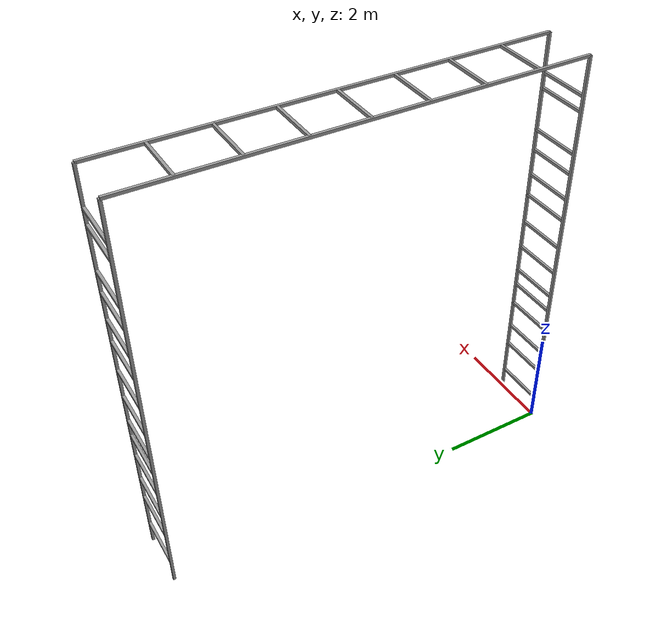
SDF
<?xml version="1.0" ?>
<sdf version="1.5">
  <model name="untei">
    <static>true</static>
    <link name="link">

<collision name="unteiV1collision">
<pose>0.00 0.00 4.00 0.00 0.00 0.00</pose>
<geometry> <box> <size>0.05 0.05 8.00</size> </box> </geometry>
</collision>
<visual name="unteiV1visual">
<pose>0.00 0.00 4.00 0.00 0.00 0.00</pose>
<geometry> <box> <size>0.05 0.05 8.00</size> </box> </geometry>
<material> <script> <uri>file://media/materials/scripts/gazebo.material</uri>
<name>Gazebo/Grey</name> </script> </material>
</visual>

<collision name="unteiV2collision">
<pose>1.00 0.00 4.00 0.00 0.00 0.00</pose>
<geometry> <box> <size>0.05 0.05 8.00</size> </box> </geometry>
</collision>
<visual name="unteiV2visual">
<pose>1.00 0.00 4.00 0.00 0.00 0.00</pose>
<geometry> <box> <size>0.05 0.05 8.00</size> </box> </geometry>
<material> <script> <uri>file://media/materials/scripts/gazebo.material</uri>
<name>Gazebo/Grey</name> </script> </material>
</visual>

<collision name="unteiH1collision">
<pose>0.50 0.00 0.486533 0.00 0.00 0.00</pose>
<geometry> <box> <size>1.00 0.05 0.05</size> </box> </geometry>
</collision>
<visual name="unteiH1visual">
<pose>0.50 0.00 0.486533 0.00 0.00 0.00</pose>
<geometry> <box> <size>1.00 0.05 0.05</size> </box> </geometry>
<material> <script> <uri>file://media/materials/scripts/gazebo.material</uri>
<name>Gazebo/Grey</name> </script> </material>
</visual>

<collision name="unteiH2collision">
<pose>0.50 0.00 1.221067 0.00 0.00 0.00</pose>
<geometry> <box> <size>1.00 0.05 0.05</size> </box> </geometry>
</collision>
<visual name="unteiH2visual">
<pose>0.50 0.00 1.221067 0.00 0.00 0.00</pose>
<geometry> <box> <size>1.00 0.05 0.05</size> </box> </geometry>
<material> <script> <uri>file://media/materials/scripts/gazebo.material</uri>
<name>Gazebo/Grey</name> </script> </material>
</visual>

<collision name="unteiH3collision">
<pose>0.50 0.00 1.710800 0.00 0.00 0.00</pose>
<geometry> <box> <size>1.00 0.05 0.05</size> </box> </geometry>
</collision>
<visual name="unteiH3visual">
<pose>0.50 0.00 1.710800 0.00 0.00 0.00</pose>
<geometry> <box> <size>1.00 0.05 0.05</size> </box> </geometry>
<material> <script> <uri>file://media/materials/scripts/gazebo.material</uri>
<name>Gazebo/Grey</name> </script> </material>
</visual>

<collision name="unteiH4collision">
<pose>0.50 0.00 2.299333 0.00 0.00 0.00</pose>
<geometry> <box> <size>1.00 0.05 0.05</size> </box> </geometry>
</collision>
<visual name="unteiH4visual">
<pose>0.50 0.00 2.299333 0.00 0.00 0.00</pose>
<geometry> <box> <size>1.00 0.05 0.05</size> </box> </geometry>
<material> <script> <uri>file://media/materials/scripts/gazebo.material</uri>
<name>Gazebo/Grey</name> </script> </material>
</visual>

<collision name="unteiH5collision">
<pose>0.50 0.00 2.783867 0.00 0.00 0.00</pose>
<geometry> <box> <size>1.00 0.05 0.05</size> </box> </geometry>
</collision>
<visual name="unteiH5visual">
<pose>0.50 0.00 2.783867 0.00 0.00 0.00</pose>
<geometry> <box> <size>1.00 0.05 0.05</size> </box> </geometry>
<material> <script> <uri>file://media/materials/scripts/gazebo.material</uri>
<name>Gazebo/Grey</name> </script> </material>
</visual>

<collision name="unteiH6collision">
<pose>0.50 0.00 3.134000 0.00 0.00 0.00</pose>
<geometry> <box> <size>1.00 0.05 0.05</size> </box> </geometry>
</collision>
<visual name="unteiH6visual">
<pose>0.50 0.00 3.134000 0.00 0.00 0.00</pose>
<geometry> <box> <size>1.00 0.05 0.05</size> </box> </geometry>
<material> <script> <uri>file://media/materials/scripts/gazebo.material</uri>
<name>Gazebo/Grey</name> </script> </material>
</visual>

<collision name="unteiH7collision">
<pose>0.50 0.00 3.687733 0.00 0.00 0.00</pose>
<geometry> <box> <size>1.00 0.05 0.05</size> </box> </geometry>
</collision>
<visual name="unteiH7visual">
<pose>0.50 0.00 3.687733 0.00 0.00 0.00</pose>
<geometry> <box> <size>1.00 0.05 0.05</size> </box> </geometry>
<material> <script> <uri>file://media/materials/scripts/gazebo.material</uri>
<name>Gazebo/Grey</name> </script> </material>
</visual>

<collision name="unteiH8collision">
<pose>0.50 0.00 4.263467 0.00 0.00 0.00</pose>
<geometry> <box> <size>1.00 0.05 0.05</size> </box> </geometry>
</collision>
<visual name="unteiH8visual">
<pose>0.50 0.00 4.263467 0.00 0.00 0.00</pose>
<geometry> <box> <size>1.00 0.05 0.05</size> </box> </geometry>
<material> <script> <uri>file://media/materials/scripts/gazebo.material</uri>
<name>Gazebo/Grey</name> </script> </material>
</visual>

<collision name="unteiH9collision">
<pose>0.50 0.00 4.859600 0.00 0.00 0.00</pose>
<geometry> <box> <size>1.00 0.05 0.05</size> </box> </geometry>
</collision>
<visual name="unteiH9visual">
<pose>0.50 0.00 4.859600 0.00 0.00 0.00</pose>
<geometry> <box> <size>1.00 0.05 0.05</size> </box> </geometry>
<material> <script> <uri>file://media/materials/scripts/gazebo.material</uri>
<name>Gazebo/Grey</name> </script> </material>
</visual>

<collision name="unteiH10collision">
<pose>0.50 0.00 5.301733 0.00 0.00 0.00</pose>
<geometry> <box> <size>1.00 0.05 0.05</size> </box> </geometry>
</collision>
<visual name="unteiH10visual">
<pose>0.50 0.00 5.301733 0.00 0.00 0.00</pose>
<geometry> <box> <size>1.00 0.05 0.05</size> </box> </geometry>
<material> <script> <uri>file://media/materials/scripts/gazebo.material</uri>
<name>Gazebo/Grey</name> </script> </material>
</visual>

<collision name="unteiH11collision">
<pose>0.50 0.00 5.811467 0.00 0.00 0.00</pose>
<geometry> <box> <size>1.00 0.05 0.05</size> </box> </geometry>
</collision>
<visual name="unteiH11visual">
<pose>0.50 0.00 5.811467 0.00 0.00 0.00</pose>
<geometry> <box> <size>1.00 0.05 0.05</size> </box> </geometry>
<material> <script> <uri>file://media/materials/scripts/gazebo.material</uri>
<name>Gazebo/Grey</name> </script> </material>
</visual>

<collision name="unteiH12collision">
<pose>0.50 0.00 6.210800 0.00 0.00 0.00</pose>
<geometry> <box> <size>1.00 0.05 0.05</size> </box> </geometry>
</collision>
<visual name="unteiH12visual">
<pose>0.50 0.00 6.210800 0.00 0.00 0.00</pose>
<geometry> <box> <size>1.00 0.05 0.05</size> </box> </geometry>
<material> <script> <uri>file://media/materials/scripts/gazebo.material</uri>
<name>Gazebo/Grey</name> </script> </material>
</visual>

<collision name="unteiH13collision">
<pose>0.50 0.00 7.009333 0.00 0.00 0.00</pose>
<geometry> <box> <size>1.00 0.05 0.05</size> </box> </geometry>
</collision>
<visual name="unteiH13visual">
<pose>0.50 0.00 7.009333 0.00 0.00 0.00</pose>
<geometry> <box> <size>1.00 0.05 0.05</size> </box> </geometry>
<material> <script> <uri>file://media/materials/scripts/gazebo.material</uri>
<name>Gazebo/Grey</name> </script> </material>
</visual>

<collision name="unteiH14collision">
<pose>0.50 0.00 7.290267 0.00 0.00 0.00</pose>
<geometry> <box> <size>1.00 0.05 0.05</size> </box> </geometry>
</collision>
<visual name="unteiH14visual">
<pose>0.50 0.00 7.290267 0.00 0.00 0.00</pose>
<geometry> <box> <size>1.00 0.05 0.05</size> </box> </geometry>
<material> <script> <uri>file://media/materials/scripts/gazebo.material</uri>
<name>Gazebo/Grey</name> </script> </material>
</visual>

<collision name="untei2V1collision">
<pose>0.00 8.00 4.00 0.00 0.00 0.00</pose>
<geometry> <box> <size>0.05 0.05 8.00</size> </box> </geometry>
</collision>
<visual name="untei2V1visual">
<pose>0.00 8.00 4.00 0.00 0.00 0.00</pose>
<geometry> <box> <size>0.05 0.05 8.00</size> </box> </geometry>
<material> <script> <uri>file://media/materials/scripts/gazebo.material</uri>
<name>Gazebo/Grey</name> </script> </material>
</visual>

<collision name="untei2V2collision">
<pose>1.00 8.00 4.00 0.00 0.00 0.00</pose>
<geometry> <box> <size>0.05 0.05 8.00</size> </box> </geometry>
</collision>
<visual name="untei2V2visual">
<pose>1.00 8.00 4.00 0.00 0.00 0.00</pose>
<geometry> <box> <size>0.05 0.05 8.00</size> </box> </geometry>
<material> <script> <uri>file://media/materials/scripts/gazebo.material</uri>
<name>Gazebo/Grey</name> </script> </material>
</visual>

<collision name="untei2H1collision">
<pose>0.50 8.00 0.486533 0.00 0.00 0.00</pose>
<geometry> <box> <size>1.00 0.05 0.05</size> </box> </geometry>
</collision>
<visual name="untei2H1visual">
<pose>0.50 8.00 0.486533 0.00 0.00 0.00</pose>
<geometry> <box> <size>1.00 0.05 0.05</size> </box> </geometry>
<material> <script> <uri>file://media/materials/scripts/gazebo.material</uri>
<name>Gazebo/Grey</name> </script> </material>
</visual>

<collision name="untei2H2collision">
<pose>0.50 8.00 1.221067 0.00 0.00 0.00</pose>
<geometry> <box> <size>1.00 0.05 0.05</size> </box> </geometry>
</collision>
<visual name="untei2H2visual">
<pose>0.50 8.00 1.221067 0.00 0.00 0.00</pose>
<geometry> <box> <size>1.00 0.05 0.05</size> </box> </geometry>
<material> <script> <uri>file://media/materials/scripts/gazebo.material</uri>
<name>Gazebo/Grey</name> </script> </material>
</visual>

<collision name="untei2H3collision">
<pose>0.50 8.00 1.710800 0.00 0.00 0.00</pose>
<geometry> <box> <size>1.00 0.05 0.05</size> </box> </geometry>
</collision>
<visual name="untei2H3visual">
<pose>0.50 8.00 1.710800 0.00 0.00 0.00</pose>
<geometry> <box> <size>1.00 0.05 0.05</size> </box> </geometry>
<material> <script> <uri>file://media/materials/scripts/gazebo.material</uri>
<name>Gazebo/Grey</name> </script> </material>
</visual>

<collision name="untei2H4collision">
<pose>0.50 8.00 2.299333 0.00 0.00 0.00</pose>
<geometry> <box> <size>1.00 0.05 0.05</size> </box> </geometry>
</collision>
<visual name="untei2H4visual">
<pose>0.50 8.00 2.299333 0.00 0.00 0.00</pose>
<geometry> <box> <size>1.00 0.05 0.05</size> </box> </geometry>
<material> <script> <uri>file://media/materials/scripts/gazebo.material</uri>
<name>Gazebo/Grey</name> </script> </material>
</visual>

<collision name="untei2H5collision">
<pose>0.50 8.00 2.783867 0.00 0.00 0.00</pose>
<geometry> <box> <size>1.00 0.05 0.05</size> </box> </geometry>
</collision>
<visual name="untei2H5visual">
<pose>0.50 8.00 2.783867 0.00 0.00 0.00</pose>
<geometry> <box> <size>1.00 0.05 0.05</size> </box> </geometry>
<material> <script> <uri>file://media/materials/scripts/gazebo.material</uri>
<name>Gazebo/Grey</name> </script> </material>
</visual>

<collision name="untei2H6collision">
<pose>0.50 8.00 3.134000 0.00 0.00 0.00</pose>
<geometry> <box> <size>1.00 0.05 0.05</size> </box> </geometry>
</collision>
<visual name="untei2H6visual">
<pose>0.50 8.00 3.134000 0.00 0.00 0.00</pose>
<geometry> <box> <size>1.00 0.05 0.05</size> </box> </geometry>
<material> <script> <uri>file://media/materials/scripts/gazebo.material</uri>
<name>Gazebo/Grey</name> </script> </material>
</visual>

<collision name="untei2H7collision">
<pose>0.50 8.00 3.687733 0.00 0.00 0.00</pose>
<geometry> <box> <size>1.00 0.05 0.05</size> </box> </geometry>
</collision>
<visual name="untei2H7visual">
<pose>0.50 8.00 3.687733 0.00 0.00 0.00</pose>
<geometry> <box> <size>1.00 0.05 0.05</size> </box> </geometry>
<material> <script> <uri>file://media/materials/scripts/gazebo.material</uri>
<name>Gazebo/Grey</name> </script> </material>
</visual>

<collision name="untei2H8collision">
<pose>0.50 8.00 4.263467 0.00 0.00 0.00</pose>
<geometry> <box> <size>1.00 0.05 0.05</size> </box> </geometry>
</collision>
<visual name="untei2H8visual">
<pose>0.50 8.00 4.263467 0.00 0.00 0.00</pose>
<geometry> <box> <size>1.00 0.05 0.05</size> </box> </geometry>
<material> <script> <uri>file://media/materials/scripts/gazebo.material</uri>
<name>Gazebo/Grey</name> </script> </material>
</visual>

<collision name="untei2H9collision">
<pose>0.50 8.00 4.859600 0.00 0.00 0.00</pose>
<geometry> <box> <size>1.00 0.05 0.05</size> </box> </geometry>
</collision>
<visual name="untei2H9visual">
<pose>0.50 8.00 4.859600 0.00 0.00 0.00</pose>
<geometry> <box> <size>1.00 0.05 0.05</size> </box> </geometry>
<material> <script> <uri>file://media/materials/scripts/gazebo.material</uri>
<name>Gazebo/Grey</name> </script> </material>
</visual>

<collision name="untei2H10collision">
<pose>0.50 8.00 5.301733 0.00 0.00 0.00</pose>
<geometry> <box> <size>1.00 0.05 0.05</size> </box> </geometry>
</collision>
<visual name="untei2H10visual">
<pose>0.50 8.00 5.301733 0.00 0.00 0.00</pose>
<geometry> <box> <size>1.00 0.05 0.05</size> </box> </geometry>
<material> <script> <uri>file://media/materials/scripts/gazebo.material</uri>
<name>Gazebo/Grey</name> </script> </material>
</visual>

<collision name="untei2H11collision">
<pose>0.50 8.00 5.811467 0.00 0.00 0.00</pose>
<geometry> <box> <size>1.00 0.05 0.05</size> </box> </geometry>
</collision>
<visual name="untei2H11visual">
<pose>0.50 8.00 5.811467 0.00 0.00 0.00</pose>
<geometry> <box> <size>1.00 0.05 0.05</size> </box> </geometry>
<material> <script> <uri>file://media/materials/scripts/gazebo.material</uri>
<name>Gazebo/Grey</name> </script> </material>
</visual>

<collision name="untei2H12collision">
<pose>0.50 8.00 6.210800 0.00 0.00 0.00</pose>
<geometry> <box> <size>1.00 0.05 0.05</size> </box> </geometry>
</collision>
<visual name="untei2H12visual">
<pose>0.50 8.00 6.210800 0.00 0.00 0.00</pose>
<geometry> <box> <size>1.00 0.05 0.05</size> </box> </geometry>
<material> <script> <uri>file://media/materials/scripts/gazebo.material</uri>
<name>Gazebo/Grey</name> </script> </material>
</visual>

<collision name="untei2H13collision">
<pose>0.50 8.00 7.009333 0.00 0.00 0.00</pose>
<geometry> <box> <size>1.00 0.05 0.05</size> </box> </geometry>
</collision>
<visual name="untei2H13visual">
<pose>0.50 8.00 7.009333 0.00 0.00 0.00</pose>
<geometry> <box> <size>1.00 0.05 0.05</size> </box> </geometry>
<material> <script> <uri>file://media/materials/scripts/gazebo.material</uri>
<name>Gazebo/Grey</name> </script> </material>
</visual>

<collision name="untei2H14collision">
<pose>0.50 8.00 7.290267 0.00 0.00 0.00</pose>
<geometry> <box> <size>1.00 0.05 0.05</size> </box> </geometry>
</collision>
<visual name="untei2H14visual">
<pose>0.50 8.00 7.290267 0.00 0.00 0.00</pose>
<geometry> <box> <size>1.00 0.05 0.05</size> </box> </geometry>
<material> <script> <uri>file://media/materials/scripts/gazebo.material</uri>
<name>Gazebo/Grey</name> </script> </material>
</visual>

<collision name="untei3H1collision">
<pose>0.00 4.00 8.00 0.00 0.00 0.00</pose>
<geometry> <box> <size>0.05 8.00 0.05</size> </box> </geometry>
</collision>
<visual name="untei3H1visual">
<pose>0.00 4.00 8.00 0.00 0.00 0.00</pose>
<geometry> <box> <size>0.05 8.00 0.05</size> </box> </geometry>
<material> <script> <uri>file://media/materials/scripts/gazebo.material</uri>
<name>Gazebo/Grey</name> </script> </material>
</visual>

<collision name="untei3H2collision">
<pose>1.00 4.00 8.00 0.00 0.00 0.00</pose>
<geometry> <box> <size>0.05 8.00 0.05</size> </box> </geometry>
</collision>
<visual name="untei3H2visual">
<pose>1.00 4.00 8.00 0.00 0.00 0.00</pose>
<geometry> <box> <size>0.05 8.00 0.05</size> </box> </geometry>
<material> <script> <uri>file://media/materials/scripts/gazebo.material</uri>
<name>Gazebo/Grey</name> </script> </material>
</visual>

<collision name="untei3H3collision">
<pose>0.50 1.00 8.0 0.00 0.00 0.00</pose>
<geometry> <box> <size>1.00 0.05 0.05</size> </box> </geometry>
</collision>
<visual name="untei3H3visual">
<pose>0.50 1.00 8.0 0.00 0.00 0.00</pose>
<geometry> <box> <size>1.00 0.05 0.05</size> </box> </geometry>
<material> <script> <uri>file://media/materials/scripts/gazebo.material</uri>
<name>Gazebo/Grey</name> </script> </material>
</visual>

<collision name="untei3H4collision">
<pose>0.50 2.00 8.0 0.00 0.00 0.00</pose>
<geometry> <box> <size>1.00 0.05 0.05</size> </box> </geometry>
</collision>
<visual name="untei3H4visual">
<pose>0.50 2.00 8.0 0.00 0.00 0.00</pose>
<geometry> <box> <size>1.00 0.05 0.05</size> </box> </geometry>
<material> <script> <uri>file://media/materials/scripts/gazebo.material</uri>
<name>Gazebo/Grey</name> </script> </material>
</visual>

<collision name="untei3H5collision">
<pose>0.50 3.00 8.0 0.00 0.00 0.00</pose>
<geometry> <box> <size>1.00 0.05 0.05</size> </box> </geometry>
</collision>
<visual name="untei3H5visual">
<pose>0.50 3.00 8.0 0.00 0.00 0.00</pose>
<geometry> <box> <size>1.00 0.05 0.05</size> </box> </geometry>
<material> <script> <uri>file://media/materials/scripts/gazebo.material</uri>
<name>Gazebo/Grey</name> </script> </material>
</visual>

<collision name="untei3H6collision">
<pose>0.50 4.00 8.0 0.00 0.00 0.00</pose>
<geometry> <box> <size>1.00 0.05 0.05</size> </box> </geometry>
</collision>
<visual name="untei3H6visual">
<pose>0.50 4.00 8.0 0.00 0.00 0.00</pose>
<geometry> <box> <size>1.00 0.05 0.05</size> </box> </geometry>
<material> <script> <uri>file://media/materials/scripts/gazebo.material</uri>
<name>Gazebo/Grey</name> </script> </material>
</visual>

<collision name="untei3H7collision">
<pose>0.50 5.00 8.0 0.00 0.00 0.00</pose>
<geometry> <box> <size>1.00 0.05 0.05</size> </box> </geometry>
</collision>
<visual name="untei3H7visual">
<pose>0.50 5.00 8.0 0.00 0.00 0.00</pose>
<geometry> <box> <size>1.00 0.05 0.05</size> </box> </geometry>
<material> <script> <uri>file://media/materials/scripts/gazebo.material</uri>
<name>Gazebo/Grey</name> </script> </material>
</visual>

<collision name="untei3H8collision">
<pose>0.50 6.00 8.0 0.00 0.00 0.00</pose>
<geometry> <box> <size>1.00 0.05 0.05</size> </box> </geometry>
</collision>
<visual name="untei3H8visual">
<pose>0.50 6.00 8.0 0.00 0.00 0.00</pose>
<geometry> <box> <size>1.00 0.05 0.05</size> </box> </geometry>
<material> <script> <uri>file://media/materials/scripts/gazebo.material</uri>
<name>Gazebo/Grey</name> </script> </material>
</visual>

<collision name="untei3H9collision">
<pose>0.50 7.00 8.0 0.00 0.00 0.00</pose>
<geometry> <box> <size>1.00 0.05 0.05</size> </box> </geometry>
</collision>
<visual name="untei3H9visual">
<pose>0.50 7.00 8.0 0.00 0.00 0.00</pose>
<geometry> <box> <size>1.00 0.05 0.05</size> </box> </geometry>
<material> <script> <uri>file://media/materials/scripts/gazebo.material</uri>
<name>Gazebo/Grey</name> </script> </material>
</visual>

    </link>
  </model>
</sdf>
